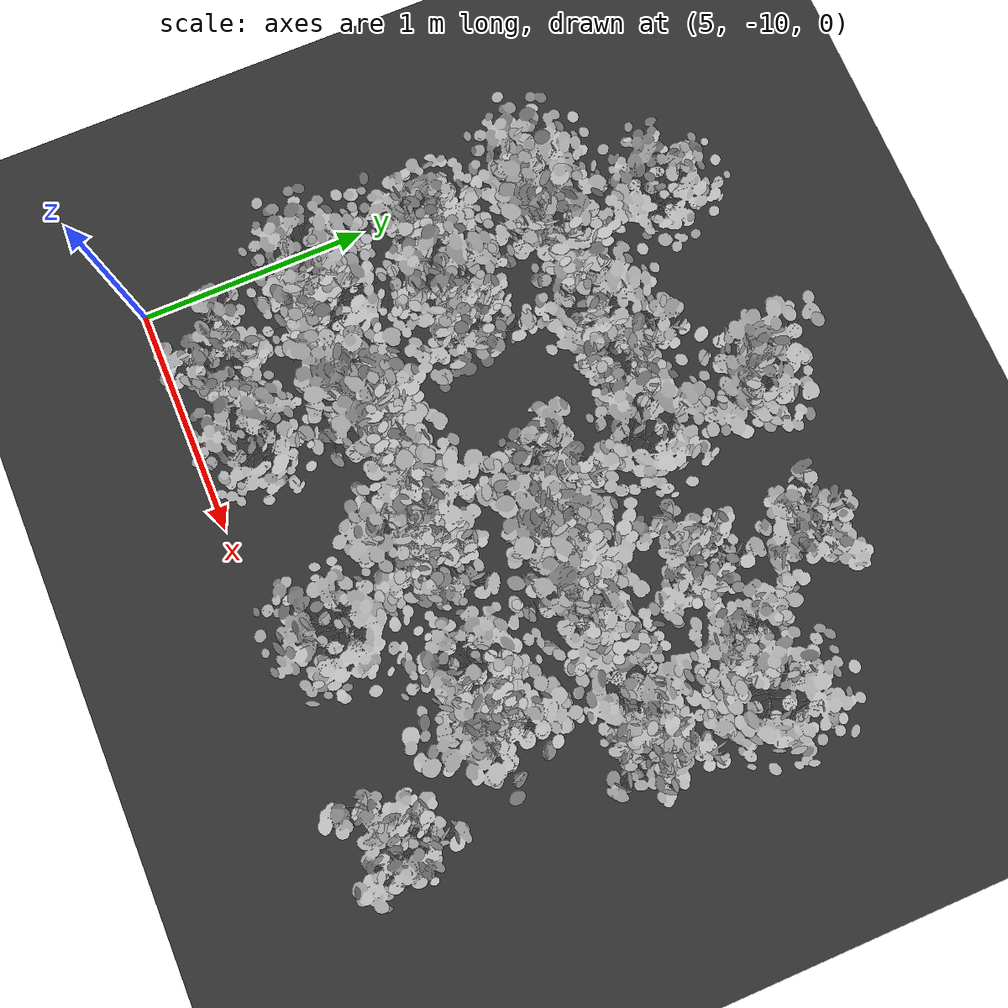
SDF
<sdf version="1.7">
 <world name="default">
  <model name="ground_plane">
   <static>1</static>
   <link name="link">
    <collision name="collision">
     <geometry><plane><normal>0 0 1</normal><size>100 100</size></plane></geometry>
     <surface>
      <contact><collide_bitmask>65535</collide_bitmask></contact>
      <friction><ode><mu>100</mu><mu2>50</mu2></ode></friction>
     </surface>
    </collision>
    <visual name="visual">
     <cast_shadows>0</cast_shadows>
     <geometry><plane><normal>0 0 1</normal><size>100 100</size></plane></geometry>
     <material>
      <ambient>0.2 0.2 0.2 1.0</ambient>
      <diffuse>0.2 0.2 0.2 1.0</diffuse>
      <specular>0.2 0.2 0.2 1.0</specular>
      <emissive>0.2 0.2 0.2 1.0</emissive>
     </material>
    </visual>
   </link>
  </model>
  <model name="ground">
   <pose>5 -0.5 0.01  3.141592654 0 0</pose>
   <static>true</static>
   <link name="body">
    <visual name="visual">
     <cast_shadows>0</cast_shadows>
     <geometry>
      <mesh><uri>file:///home/ifcosta/final_ws/src/cnn_line/worlds/models/ground.obj</uri></mesh>
     </geometry>
    </visual>
   </link>
  </model>
  <model name="plt_30052">
   <pose>5.42 -9.74 0.0171 0.0 0.0 -1.2948</pose>
   <static>true</static>
   <link name="body">
    <visual name="visual">
     <geometry>
      <mesh><uri>file:///home/ifcosta/final_ws/src/cnn_line/worlds/models/plant34.obj</uri></mesh>
     </geometry>
    </visual>
   </link>
  </model>
  <model name="plt_30053">
   <pose>5.77 -9.74 0.0141 0.0 0.0 0.37879</pose>
   <static>true</static>
   <link name="body">
    <visual name="visual">
     <geometry>
      <mesh><uri>file:///home/ifcosta/final_ws/src/cnn_line/worlds/models/plant35.obj</uri></mesh>
     </geometry>
    </visual>
   </link>
  </model>
  <model name="plt_30056">
   <pose>6.58 -9.71 0.0156 0.0 0.0 -1.2176</pose>
   <static>true</static>
   <link name="body">
    <visual name="visual">
     <geometry>
      <mesh><uri>file:///home/ifcosta/final_ws/src/cnn_line/worlds/models/plant32.obj</uri></mesh>
     </geometry>
    </visual>
   </link>
  </model>
  <model name="plt_30059">
   <pose>7.47 -9.73 0.0152 0.0 0.0 -0.35451</pose>
   <static>true</static>
   <link name="body">
    <visual name="visual">
     <geometry>
      <mesh><uri>file:///home/ifcosta/final_ws/src/cnn_line/worlds/models/plant34.obj</uri></mesh>
     </geometry>
    </visual>
   </link>
  </model>
  <model name="plt_30085">
   <pose>5.14 -9.27 0.0163 0.0 0.0 0.88233</pose>
   <static>true</static>
   <link name="body">
    <visual name="visual">
     <geometry>
      <mesh><uri>file:///home/ifcosta/final_ws/src/cnn_line/worlds/models/plant32.obj</uri></mesh>
     </geometry>
    </visual>
   </link>
  </model>
  <model name="plt_30086">
   <pose>5.33 -9.26 0.0139 0.0 0.0 -0.44202</pose>
   <static>true</static>
   <link name="body">
    <visual name="visual">
     <geometry>
      <mesh><uri>file:///home/ifcosta/final_ws/src/cnn_line/worlds/models/plant32.obj</uri></mesh>
     </geometry>
    </visual>
   </link>
  </model>
  <model name="plt_30087">
   <pose>5.74 -9.26 0.0161 0.0 0.0 0.57358</pose>
   <static>true</static>
   <link name="body">
    <visual name="visual">
     <geometry>
      <mesh><uri>file:///home/ifcosta/final_ws/src/cnn_line/worlds/models/plant30.obj</uri></mesh>
     </geometry>
    </visual>
   </link>
  </model>
  <model name="plt_30088">
   <pose>5.98 -9.25 0.0138 0.0 0.0 0.58369</pose>
   <static>true</static>
   <link name="body">
    <visual name="visual">
     <geometry>
      <mesh><uri>file:///home/ifcosta/final_ws/src/cnn_line/worlds/models/plant36.obj</uri></mesh>
     </geometry>
    </visual>
   </link>
  </model>
  <model name="plt_30089">
   <pose>6.28 -9.26 0.012 0.0 0.0 -1.3113</pose>
   <static>true</static>
   <link name="body">
    <visual name="visual">
     <geometry>
      <mesh><uri>file:///home/ifcosta/final_ws/src/cnn_line/worlds/models/plant30.obj</uri></mesh>
     </geometry>
    </visual>
   </link>
  </model>
  <model name="plt_30090">
   <pose>6.55 -9.22 0.0124 0.0 0.0 0.79015</pose>
   <static>true</static>
   <link name="body">
    <visual name="visual">
     <geometry>
      <mesh><uri>file:///home/ifcosta/final_ws/src/cnn_line/worlds/models/plant33.obj</uri></mesh>
     </geometry>
    </visual>
   </link>
  </model>
  <model name="plt_30091">
   <pose>6.91 -9.27 0.0171 0.0 0.0 -1.5528</pose>
   <static>true</static>
   <link name="body">
    <visual name="visual">
     <geometry>
      <mesh><uri>file:///home/ifcosta/final_ws/src/cnn_line/worlds/models/plant35.obj</uri></mesh>
     </geometry>
    </visual>
   </link>
  </model>
  <model name="plt_30092">
   <pose>7.19 -9.25 0.016 0.0 0.0 2.2782</pose>
   <static>true</static>
   <link name="body">
    <visual name="visual">
     <geometry>
      <mesh><uri>file:///home/ifcosta/final_ws/src/cnn_line/worlds/models/plant36.obj</uri></mesh>
     </geometry>
    </visual>
   </link>
  </model>
  <model name="plt_30119">
   <pose>5.1 -8.74 0.017 0.0 0.0 0.71267</pose>
   <static>true</static>
   <link name="body">
    <visual name="visual">
     <geometry>
      <mesh><uri>file:///home/ifcosta/final_ws/src/cnn_line/worlds/models/plant31.obj</uri></mesh>
     </geometry>
    </visual>
   </link>
  </model>
  <model name="plt_30120">
   <pose>5.44 -8.78 0.0122 0.0 0.0 0.96015</pose>
   <static>true</static>
   <link name="body">
    <visual name="visual">
     <geometry>
      <mesh><uri>file:///home/ifcosta/final_ws/src/cnn_line/worlds/models/plant32.obj</uri></mesh>
     </geometry>
    </visual>
   </link>
  </model>
  <model name="plt_30121">
   <pose>5.67 -8.71 0.0162 0.0 0.0 1.178</pose>
   <static>true</static>
   <link name="body">
    <visual name="visual">
     <geometry>
      <mesh><uri>file:///home/ifcosta/final_ws/src/cnn_line/worlds/models/plant33.obj</uri></mesh>
     </geometry>
    </visual>
   </link>
  </model>
  <model name="plt_30123">
   <pose>6.28 -8.74 0.0147 0.0 0.0 -1.4031</pose>
   <static>true</static>
   <link name="body">
    <visual name="visual">
     <geometry>
      <mesh><uri>file:///home/ifcosta/final_ws/src/cnn_line/worlds/models/plant33.obj</uri></mesh>
     </geometry>
    </visual>
   </link>
  </model>
  <model name="plt_30124">
   <pose>6.58 -8.74 0.0153 0.0 0.0 0.69237</pose>
   <static>true</static>
   <link name="body">
    <visual name="visual">
     <geometry>
      <mesh><uri>file:///home/ifcosta/final_ws/src/cnn_line/worlds/models/plant30.obj</uri></mesh>
     </geometry>
    </visual>
   </link>
  </model>
  <model name="plt_30125">
   <pose>6.88 -8.78 0.0126 0.0 0.0 0.4842</pose>
   <static>true</static>
   <link name="body">
    <visual name="visual">
     <geometry>
      <mesh><uri>file:///home/ifcosta/final_ws/src/cnn_line/worlds/models/plant36.obj</uri></mesh>
     </geometry>
    </visual>
   </link>
  </model>
  <model name="plt_30126">
   <pose>7.28 -8.72 0.0137 0.0 0.0 0.82664</pose>
   <static>true</static>
   <link name="body">
    <visual name="visual">
     <geometry>
      <mesh><uri>file:///home/ifcosta/final_ws/src/cnn_line/worlds/models/plant35.obj</uri></mesh>
     </geometry>
    </visual>
   </link>
  </model>
  <model name="plt_30127">
   <pose>7.48 -8.78 0.0137 0.0 0.0 -1.121</pose>
   <static>true</static>
   <link name="body">
    <visual name="visual">
     <geometry>
      <mesh><uri>file:///home/ifcosta/final_ws/src/cnn_line/worlds/models/plant33.obj</uri></mesh>
     </geometry>
    </visual>
   </link>
  </model>
  <model name="plt_30153">
   <pose>5.1 -8.29 0.0173 0.0 0.0 0.49991</pose>
   <static>true</static>
   <link name="body">
    <visual name="visual">
     <geometry>
      <mesh><uri>file:///home/ifcosta/final_ws/src/cnn_line/worlds/models/plant32.obj</uri></mesh>
     </geometry>
    </visual>
   </link>
  </model>
  <model name="plt_30154">
   <pose>5.39 -8.27 0.0154 0.0 0.0 0.26969</pose>
   <static>true</static>
   <link name="body">
    <visual name="visual">
     <geometry>
      <mesh><uri>file:///home/ifcosta/final_ws/src/cnn_line/worlds/models/plant30.obj</uri></mesh>
     </geometry>
    </visual>
   </link>
  </model>
  <model name="plt_30155">
   <pose>5.74 -8.26 0.0122 0.0 0.0 0.47701</pose>
   <static>true</static>
   <link name="body">
    <visual name="visual">
     <geometry>
      <mesh><uri>file:///home/ifcosta/final_ws/src/cnn_line/worlds/models/plant32.obj</uri></mesh>
     </geometry>
    </visual>
   </link>
  </model>
  <model name="plt_30156">
   <pose>6.02 -8.26 0.0153 0.0 0.0 -0.65728</pose>
   <static>true</static>
   <link name="body">
    <visual name="visual">
     <geometry>
      <mesh><uri>file:///home/ifcosta/final_ws/src/cnn_line/worlds/models/plant33.obj</uri></mesh>
     </geometry>
    </visual>
   </link>
  </model>
  <model name="plt_30157">
   <pose>6.33 -8.25 0.0133 0.0 0.0 0.85169</pose>
   <static>true</static>
   <link name="body">
    <visual name="visual">
     <geometry>
      <mesh><uri>file:///home/ifcosta/final_ws/src/cnn_line/worlds/models/plant32.obj</uri></mesh>
     </geometry>
    </visual>
   </link>
  </model>
  <model name="plt_30159">
   <pose>6.91 -8.24 0.0125 0.0 0.0 -0.36072</pose>
   <static>true</static>
   <link name="body">
    <visual name="visual">
     <geometry>
      <mesh><uri>file:///home/ifcosta/final_ws/src/cnn_line/worlds/models/plant34.obj</uri></mesh>
     </geometry>
    </visual>
   </link>
  </model>
  <model name="plt_30160">
   <pose>7.25 -8.25 0.016 0.0 0.0 1.7411</pose>
   <static>true</static>
   <link name="body">
    <visual name="visual">
     <geometry>
      <mesh><uri>file:///home/ifcosta/final_ws/src/cnn_line/worlds/models/plant31.obj</uri></mesh>
     </geometry>
    </visual>
   </link>
  </model>
  <model name="plt_30161">
   <pose>7.49 -8.22 0.0172 0.0 0.0 0.094114</pose>
   <static>true</static>
   <link name="body">
    <visual name="visual">
     <geometry>
      <mesh><uri>file:///home/ifcosta/final_ws/src/cnn_line/worlds/models/plant32.obj</uri></mesh>
     </geometry>
    </visual>
   </link>
  </model>
  <model name="plt_30188">
   <pose>5.41 -7.79 0.017 0.0 0.0 1.2507</pose>
   <static>true</static>
   <link name="body">
    <visual name="visual">
     <geometry>
      <mesh><uri>file:///home/ifcosta/final_ws/src/cnn_line/worlds/models/plant35.obj</uri></mesh>
     </geometry>
    </visual>
   </link>
  </model>
  <model name="plt_30191">
   <pose>6.29 -7.77 0.0168 0.0 0.0 -0.13866</pose>
   <static>true</static>
   <link name="body">
    <visual name="visual">
     <geometry>
      <mesh><uri>file:///home/ifcosta/final_ws/src/cnn_line/worlds/models/plant36.obj</uri></mesh>
     </geometry>
    </visual>
   </link>
  </model>
  <model name="plt_30193">
   <pose>6.9 -7.77 0.013 0.0 0.0 1.1683</pose>
   <static>true</static>
   <link name="body">
    <visual name="visual">
     <geometry>
      <mesh><uri>file:///home/ifcosta/final_ws/src/cnn_line/worlds/models/plant34.obj</uri></mesh>
     </geometry>
    </visual>
   </link>
  </model>
 </world>
</sdf>
